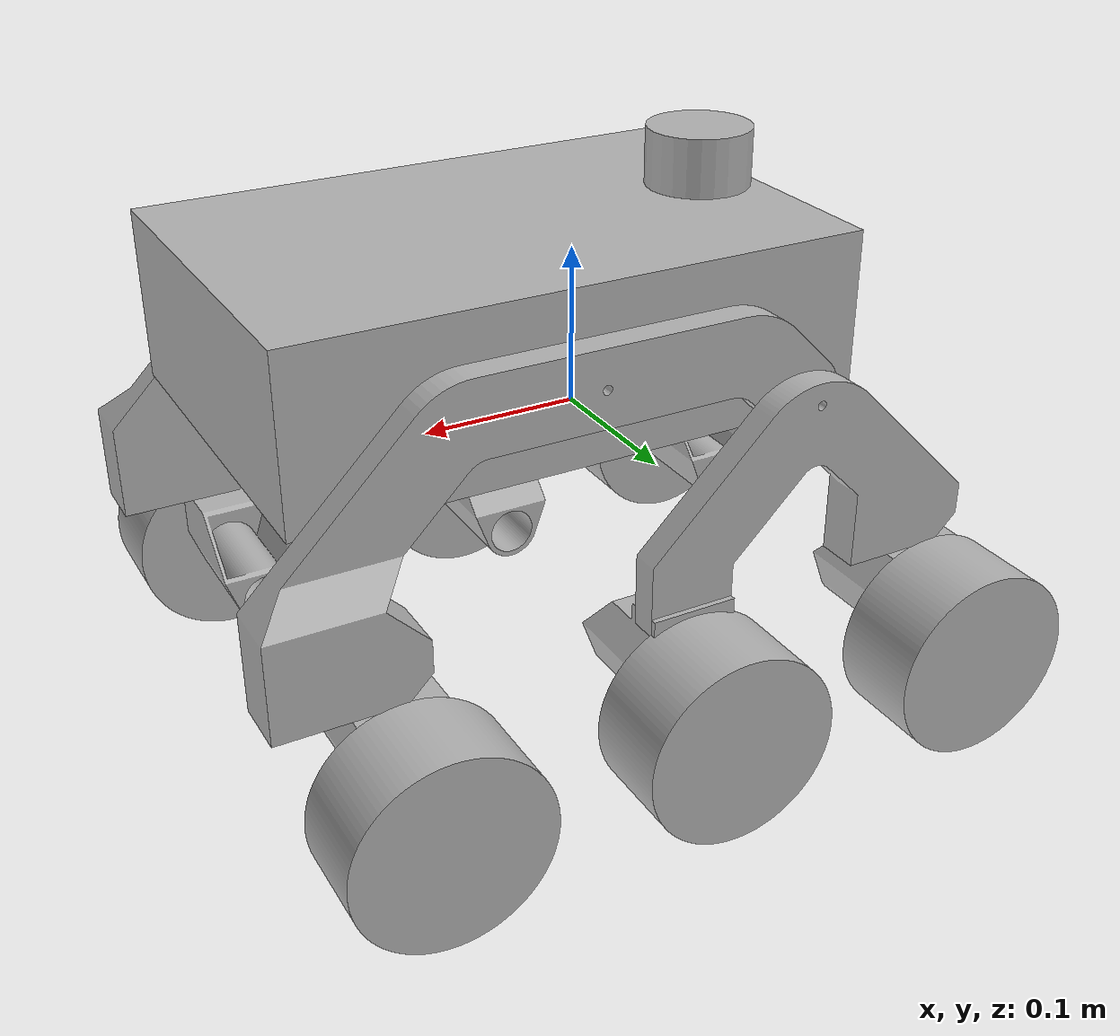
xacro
<?xml version="1.0" ?>
<robot name="forros" xmlns:xacro="http://www.ros.org/wiki/xacro">

<xacro:include filename="$(find forros_description)/urdf/materials.xacro" />
<xacro:include filename="$(find forros_description)/urdf/forros.ros2control" />
<xacro:include filename="$(find forros_description)/urdf/forros.gazebo" />
<link name="base_link">
  <inertial>
    <origin xyz="0.1099999999999859 0.115 0.12499999999999567" rpy="0 0 0"/>
    <mass value="4.238938346244173"/>
    <inertia ixx="0.0169907" iyy="0.0346538" izz="0.0459219" ixy="-0.0" iyz="-0.0" ixz="0.0"/>
  </inertial>
  <visual>
    <origin xyz="0 0 0" rpy="0 0 0"/>
    <geometry>
      <mesh filename="file://$(find forros_description)/meshes/base_link.stl" scale="0.001 0.001 0.001"/>
    </geometry>
    <material name="silver"/>
  </visual>
  <collision>
    <origin xyz="0 0 0" rpy="0 0 0"/>
    <geometry>
      <mesh filename="file://$(find forros_description)/meshes/base_link.stl" scale="0.001 0.001 0.001"/>
    </geometry>
  </collision>
</link>

<link name="right_mid_wheel_1">
  <inertial>
    <origin xyz="1.0320994585366616e-07 0.02500000022351742 4.163336342344337e-17" rpy="0 0 0"/>
    <mass value="0.3313045200437847"/>
    <inertia ixx="0.0002916" iyy="0.0004451" izz="0.0002916" ixy="0.0" iyz="0.0" ixz="-0.0"/>
  </inertial>
  <visual>
    <origin xyz="-0.069447 -0.2451 0.04945" rpy="0 0 0"/>
    <geometry>
      <mesh filename="file://$(find forros_description)/meshes/right_mid_wheel_1.stl" scale="0.001 0.001 0.001"/>
    </geometry>
    <material name="silver"/>
  </visual>
  <collision>
    <origin xyz="-0.069447 -0.2451 0.04945" rpy="0 0 0"/>
    <geometry>
      <mesh filename="file://$(find forros_description)/meshes/right_mid_wheel_1.stl" scale="0.001 0.001 0.001"/>
    </geometry>
  </collision>
</link>

<link name="left_mid_wheel_1">
  <inertial>
    <origin xyz="1.0320994585366616e-07 -0.025000000223517366 9.71445146547012e-17" rpy="0 0 0"/>
    <mass value="0.3313045200437847"/>
    <inertia ixx="0.0002916" iyy="0.0004451" izz="0.0002916" ixy="0.0" iyz="0.0" ixz="0.0"/>
  </inertial>
  <visual>
    <origin xyz="-0.069447 0.0151 0.04945" rpy="0 0 0"/>
    <geometry>
      <mesh filename="file://$(find forros_description)/meshes/left_mid_wheel_1.stl" scale="0.001 0.001 0.001"/>
    </geometry>
    <material name="silver"/>
  </visual>
  <collision>
    <origin xyz="-0.069447 0.0151 0.04945" rpy="0 0 0"/>
    <geometry>
      <mesh filename="file://$(find forros_description)/meshes/left_mid_wheel_1.stl" scale="0.001 0.001 0.001"/>
    </geometry>
  </collision>
</link>

<link name="BogieArm_left_1">
  <inertial>
    <origin xyz="-0.007934958334341356 -0.005960926612365235 -0.05324218357569474" rpy="0 0 0"/>
    <mass value="0.2125433566188938"/>
    <inertia ixx="0.000177" iyy="0.000759" izz="0.000595" ixy="1.7e-05" iyz="6e-06" ixz="-2.5e-05"/>
  </inertial>
  <visual>
    <origin xyz="0.0 0.0001 -0.098284" rpy="0 0 0"/>
    <geometry>
      <mesh filename="file://$(find forros_description)/meshes/BogieArm_left_1.stl" scale="0.001 0.001 0.001"/>
    </geometry>
    <material name="silver"/>
  </visual>
  <collision>
    <origin xyz="0.0 0.0001 -0.098284" rpy="0 0 0"/>
    <geometry>
      <mesh filename="file://$(find forros_description)/meshes/BogieArm_left_1.stl" scale="0.001 0.001 0.001"/>
    </geometry>
  </collision>
</link>

<link name="motor_house_left_mid_1">
  <inertial>
    <origin xyz="-0.02301405530505564 0.020048835168710432 -0.021928305846190148" rpy="0 0 0"/>
    <mass value="0.10114695832213066"/>
    <inertia ixx="5.5e-05" iyy="4.2e-05" izz="4.9e-05" ixy="0.0" iyz="8e-06" ixz="-0.0"/>
  </inertial>
  <visual>
    <origin xyz="-0.092547 0.0076 0.00445" rpy="0 0 0"/>
    <geometry>
      <mesh filename="file://$(find forros_description)/meshes/motor_house_left_mid_1.stl" scale="0.001 0.001 0.001"/>
    </geometry>
    <material name="silver"/>
  </visual>
  <collision>
    <origin xyz="-0.092547 0.0076 0.00445" rpy="0 0 0"/>
    <geometry>
      <mesh filename="file://$(find forros_description)/meshes/motor_house_left_mid_1.stl" scale="0.001 0.001 0.001"/>
    </geometry>
  </collision>
</link>

<link name="BogieArm_right_1">
  <inertial>
    <origin xyz="-0.007915464092062029 0.005964707737386582 -0.053111379950770074" rpy="0 0 0"/>
    <mass value="0.21306680939944553"/>
    <inertia ixx="0.000179" iyy="0.00076" izz="0.000595" ixy="-1.7e-05" iyz="-6e-06" ixz="-2.5e-05"/>
  </inertial>
  <visual>
    <origin xyz="0.0 -0.2301 -0.098284" rpy="0 0 0"/>
    <geometry>
      <mesh filename="file://$(find forros_description)/meshes/BogieArm_right_1.stl" scale="0.001 0.001 0.001"/>
    </geometry>
    <material name="silver"/>
  </visual>
  <collision>
    <origin xyz="0.0 -0.2301 -0.098284" rpy="0 0 0"/>
    <geometry>
      <mesh filename="file://$(find forros_description)/meshes/BogieArm_right_1.stl" scale="0.001 0.001 0.001"/>
    </geometry>
  </collision>
</link>

<link name="right_back_wheel_1">
  <inertial>
    <origin xyz="3.2278066333657485e-07 0.025000000067055467 4.163336342344337e-17" rpy="0 0 0"/>
    <mass value="0.3313045200437847"/>
    <inertia ixx="0.0002916" iyy="0.0004451" izz="0.0002916" ixy="-0.0" iyz="0.0" ixz="-0.0"/>
  </inertial>
  <visual>
    <origin xyz="-0.221726 -0.2451 0.04945" rpy="0 0 0"/>
    <geometry>
      <mesh filename="file://$(find forros_description)/meshes/right_back_wheel_1.stl" scale="0.001 0.001 0.001"/>
    </geometry>
    <material name="silver"/>
  </visual>
  <collision>
    <origin xyz="-0.221726 -0.2451 0.04945" rpy="0 0 0"/>
    <geometry>
      <mesh filename="file://$(find forros_description)/meshes/right_back_wheel_1.stl" scale="0.001 0.001 0.001"/>
    </geometry>
  </collision>
</link>

<link name="right_front_wheel_1">
  <inertial>
    <origin xyz="1.032099458120328e-07 0.025000000223517643 4.163336342344337e-17" rpy="0 0 0"/>
    <mass value="0.3313045200437847"/>
    <inertia ixx="0.0002916" iyy="0.0004451" izz="0.0002916" ixy="-0.0" iyz="0.0" ixz="-0.0"/>
  </inertial>
  <visual>
    <origin xyz="0.080553 -0.2446 0.04945" rpy="0 0 0"/>
    <geometry>
      <mesh filename="file://$(find forros_description)/meshes/right_front_wheel_1.stl" scale="0.001 0.001 0.001"/>
    </geometry>
    <material name="silver"/>
  </visual>
  <collision>
    <origin xyz="0.080553 -0.2446 0.04945" rpy="0 0 0"/>
    <geometry>
      <mesh filename="file://$(find forros_description)/meshes/right_front_wheel_1.stl" scale="0.001 0.001 0.001"/>
    </geometry>
  </collision>
</link>

<link name="left_back_wheel_1">
  <inertial>
    <origin xyz="3.2278066333657485e-07 -0.02500000006705523 4.85722573273506e-17" rpy="0 0 0"/>
    <mass value="0.3313045200437847"/>
    <inertia ixx="0.0002916" iyy="0.0004451" izz="0.0002916" ixy="0.0" iyz="0.0" ixz="0.0"/>
  </inertial>
  <visual>
    <origin xyz="-0.221726 0.0151 0.04945" rpy="0 0 0"/>
    <geometry>
      <mesh filename="file://$(find forros_description)/meshes/left_back_wheel_1.stl" scale="0.001 0.001 0.001"/>
    </geometry>
    <material name="silver"/>
  </visual>
  <collision>
    <origin xyz="-0.221726 0.0151 0.04945" rpy="0 0 0"/>
    <geometry>
      <mesh filename="file://$(find forros_description)/meshes/left_back_wheel_1.stl" scale="0.001 0.001 0.001"/>
    </geometry>
  </collision>
</link>

<link name="left_front_wheel_1">
  <inertial>
    <origin xyz="1.0320994583978838e-07 -0.025000000223517435 4.163336342344337e-17" rpy="0 0 0"/>
    <mass value="0.3313045200437847"/>
    <inertia ixx="0.0002916" iyy="0.0004451" izz="0.0002916" ixy="0.0" iyz="0.0" ixz="0.0"/>
  </inertial>
  <visual>
    <origin xyz="0.080553 0.0146 0.04945" rpy="0 0 0"/>
    <geometry>
      <mesh filename="file://$(find forros_description)/meshes/left_front_wheel_1.stl" scale="0.001 0.001 0.001"/>
    </geometry>
    <material name="silver"/>
  </visual>
  <collision>
    <origin xyz="0.080553 0.0146 0.04945" rpy="0 0 0"/>
    <geometry>
      <mesh filename="file://$(find forros_description)/meshes/left_front_wheel_1.stl" scale="0.001 0.001 0.001"/>
    </geometry>
  </collision>
</link>

<link name="motor_house_right_mid_1">
  <inertial>
    <origin xyz="0.02298594469494438 -0.02004883516871042 -0.02192830584619015" rpy="0 0 0"/>
    <mass value="0.1011469583221307"/>
    <inertia ixx="5.5e-05" iyy="4.2e-05" izz="4.9e-05" ixy="-0.0" iyz="-8e-06" ixz="-0.0"/>
  </inertial>
  <visual>
    <origin xyz="-0.046547 -0.2376 0.00445" rpy="0 0 0"/>
    <geometry>
      <mesh filename="file://$(find forros_description)/meshes/motor_house_right_mid_1.stl" scale="0.001 0.001 0.001"/>
    </geometry>
    <material name="silver"/>
  </visual>
  <collision>
    <origin xyz="-0.046547 -0.2376 0.00445" rpy="0 0 0"/>
    <geometry>
      <mesh filename="file://$(find forros_description)/meshes/motor_house_right_mid_1.stl" scale="0.001 0.001 0.001"/>
    </geometry>
  </collision>
</link>

<link name="motor_house_left_front_1">
  <inertial>
    <origin xyz="-0.010495831765585162 0.03363253748664037 -0.03842749012891794" rpy="0 0 0"/>
    <mass value="0.03461695947730542"/>
    <inertia ixx="2.6e-05" iyy="2e-05" izz="2.2e-05" ixy="0.0" iyz="4e-06" ixz="-0.0"/>
  </inertial>
  <visual>
    <origin xyz="0.07 0.0197 -0.001" rpy="0 0 0"/>
    <geometry>
      <mesh filename="file://$(find forros_description)/meshes/motor_house_left_front_1.stl" scale="0.001 0.001 0.001"/>
    </geometry>
    <material name="silver"/>
  </visual>
  <collision>
    <origin xyz="0.07 0.0197 -0.001" rpy="0 0 0"/>
    <geometry>
      <mesh filename="file://$(find forros_description)/meshes/motor_house_left_front_1.stl" scale="0.001 0.001 0.001"/>
    </geometry>
  </collision>
</link>

<link name="motor_house_right_front_1">
  <inertial>
    <origin xyz="-0.010495831765585203 0.20556746251335986 -0.036427490128917904" rpy="0 0 0"/>
    <mass value="0.03461695947730542"/>
    <inertia ixx="2.6e-05" iyy="2e-05" izz="2.2e-05" ixy="-0.0" iyz="-4e-06" ixz="-0.0"/>
  </inertial>
  <visual>
    <origin xyz="0.07 ${-0.0105-0.2392} 0.001" rpy="0 0 0"/>
    <geometry>
      <mesh filename="file://$(find forros_description)/meshes/motor_house_right_front_1.stl" scale="0.001 0.001 0.001"/>
    </geometry>
    <material name="silver"/>
  </visual>
  <collision>
    <origin xyz="0.07 ${-0.0105-0.2392} 0.001" rpy="0 0 0"/>
    <geometry>
      <mesh filename="file://$(find forros_description)/meshes/motor_house_right_front_1.stl" scale="0.001 0.001 0.001"/>
    </geometry>
  </collision>
</link>

<link name="motor_house_right_back_2">
  <inertial>
    <origin xyz="-0.010495612194957038 0.22156746235697392 -0.036427490128845094" rpy="0 0 0"/>
    <mass value="0.03461695947738301"/>
    <inertia ixx="2.6e-05" iyy="2e-05" izz="2.2e-05" ixy="-0.0" iyz="-4e-06" ixz="-0.0"/>
  </inertial>
  <visual>
    <origin xyz="-0.232279 ${0.0052-0.2392} 0.001" rpy="0 0 0"/>
    <geometry>
      <mesh filename="file://$(find forros_description)/meshes/motor_house_right_back_2.stl" scale="0.001 0.001 0.001"/>
    </geometry>
    <material name="silver"/>
  </visual>
  <collision>
    <origin xyz="-0.232279 ${0.0052-0.2392} 0.001" rpy="0 0 0"/>
    <geometry>
      <mesh filename="file://$(find forros_description)/meshes/motor_house_right_back_2.stl" scale="0.001 0.001 0.001"/>
    </geometry>
  </collision>
</link>

<link name="motor_house_left_back_1">
  <inertial>
    <origin xyz="-0.010495612194957038 0.018632537643026307 -0.03842749012884514" rpy="0 0 0"/>
    <mass value="0.03461695947738301"/>
    <inertia ixx="2.6e-05" iyy="2e-05" izz="2.2e-05" ixy="0.0" iyz="4e-06" ixz="-0.0"/>
  </inertial>
  <visual>
    <origin xyz="-0.232279 0.0052 -0.001" rpy="0 0 0"/>
    <geometry>
      <mesh filename="file://$(find forros_description)/meshes/motor_house_left_back_1.stl" scale="0.001 0.001 0.001"/>
    </geometry>
    <material name="silver"/>
  </visual>
  <collision>
    <origin xyz="-0.232279 0.0052 -0.001" rpy="0 0 0"/>
    <geometry>
      <mesh filename="file://$(find forros_description)/meshes/motor_house_left_back_1.stl" scale="0.001 0.001 0.001"/>
    </geometry>
  </collision>
</link>

<link name="RockerArm_left_1">
  <inertial>
    <origin xyz="0.06420889004519563 -0.010702899179575369 -0.04635989938036705" rpy="0 0 0"/>
    <mass value="0.3451338053749135"/>
    <inertia ixx="0.000724" iyy="0.003445" izz="0.00276" ixy="8e-05" iyz="-5.3e-05" ixz="0.001007"/>
  </inertial>
  <visual>
    <origin xyz="-0.11 -0.015 -0.125" rpy="0 0 0"/>
    <geometry>
      <mesh filename="file://$(find forros_description)/meshes/RockerArm_left_1.stl" scale="0.001 0.001 0.001"/>
    </geometry>
    <material name="silver"/>
  </visual>
  <collision>
    <origin xyz="-0.11 -0.015 -0.125" rpy="0 0 0"/>
    <geometry>
      <mesh filename="file://$(find forros_description)/meshes/RockerArm_left_1.stl" scale="0.001 0.001 0.001"/>
    </geometry>
  </collision>
</link>

<link name="RockerArm_right_1">
  <inertial>
    <origin xyz="0.06420889004706408 0.010702899179575398 -0.04635989937979226" rpy="0 0 0"/>
    <mass value="0.3451338053749135"/>
    <inertia ixx="0.000724" iyy="0.003445" izz="0.00276" ixy="-8e-05" iyz="5.3e-05" ixz="0.001007"/>
  </inertial>
  <visual>
    <origin xyz="-0.11 -0.215 -0.125" rpy="0 0 0"/>
    <geometry>
      <mesh filename="file://$(find forros_description)/meshes/RockerArm_right_1.stl" scale="0.001 0.001 0.001"/>
    </geometry>
    <material name="silver"/>
  </visual>
  <collision>
    <origin xyz="-0.11 -0.215 -0.125" rpy="0 0 0"/>
    <geometry>
      <mesh filename="file://$(find forros_description)/meshes/RockerArm_right_1.stl" scale="0.001 0.001 0.001"/>
    </geometry>
  </collision>
</link>

<joint name="right_mid_wheel" type="continuous">
  <origin xyz="0.0229 0.0075 -0.045" rpy="0 0 0"/>
  <parent link="motor_house_right_mid_1"/>
  <child link="right_mid_wheel_1"/>
  <axis xyz="-0.0 -1.0 0.0"/>
  <limit effort="10.0" velocity="20.0"/>
</joint>

<joint name="left_mid_wheel" type="continuous">
  <origin xyz="-0.0231 -0.0075 -0.045" rpy="0 0 0"/>
  <parent link="motor_house_left_mid_1"/>
  <child link="left_mid_wheel_1"/>
  <axis xyz="-0.0 -1.0 0.0"/>
  <limit effort="10.0" velocity="20.0"/>
</joint>

<joint name="left_rocker_bogie" type="revolute">
  <origin xyz="-0.11 -0.0151 -0.026716" rpy="0 0 0"/>
  <parent link="RockerArm_left_1"/>
  <child link="BogieArm_left_1"/>
  <axis xyz="-0.0 1.0 0.0"/>
  <limit upper="0.872665" lower="-0.436332" effort="100" velocity="100"/>
  <dynamics damping="0.1" friction="0.5"/>
</joint>

<joint name="Rigid 58" type="fixed">
  <origin xyz="0.092547 -0.0075 -0.102734" rpy="0 0 0"/>
  <parent link="BogieArm_left_1"/>
  <child link="motor_house_left_mid_1"/>
</joint>

<joint name="right_rocker_bogie" type="revolute">
  <origin xyz="-0.11 0.0151 -0.026716" rpy="0 0 0"/>
  <parent link="RockerArm_right_1"/>
  <child link="BogieArm_right_1"/>
  <axis xyz="-0.0 1.0 0.0"/>
  <limit upper="0.872665" lower="-0.436332" effort="100" velocity="100"/>
  <dynamics damping="0.1" friction="0.5"/>
</joint>

<joint name="right_back_wheel" type="continuous">
  <origin xyz="-0.010553 ${0.2501-0.2392} -0.04845" rpy="0 0 0"/>
  <parent link="motor_house_right_back_2"/>
  <child link="right_back_wheel_1"/>
  <axis xyz="0.0 -1.0 0.0"/>
  <limit effort="10.0" velocity="20.0"/>
</joint>

<joint name="right_front_wheel" type="continuous">
  <origin xyz="-0.010553 ${0.2341-0.2392} -0.04845" rpy="0 0 0"/>
  <parent link="motor_house_right_front_1"/>
  <child link="right_front_wheel_1"/>
  <axis xyz="0.0 -1.0 0.0"/>
  <limit effort="10.0" velocity="20.0"/>
</joint>

<joint name="left_back_wheel" type="continuous">
  <origin xyz="-0.010553 -0.0099 -0.05045" rpy="0 0 0"/>
  <parent link="motor_house_left_back_1"/>
  <child link="left_back_wheel_1"/>
  <axis xyz="-0.0 -1.0 -0.0"/>
  <limit effort="10.0" velocity="20.0"/>
</joint>

<joint name="left_front_wheel" type="continuous">
  <origin xyz="-0.010553 0.0051 -0.05045" rpy="0 0 0"/>
  <parent link="motor_house_left_front_1"/>
  <child link="left_front_wheel_1"/>
  <axis xyz="-0.0 -1.0 -0.0"/>
  <limit effort="10.0" velocity="20.0"/>
</joint>

<joint name="Rigid 67" type="fixed">
  <origin xyz="0.046547 0.0075 -0.102734" rpy="0 0 0"/>
  <parent link="BogieArm_right_1"/>
  <child link="motor_house_right_mid_1"/>
</joint>

<joint name="motor_house_left_front" type="revolute">
  <origin xyz="-0.07 -0.0196 -0.097284" rpy="0 0 0"/>
  <parent link="BogieArm_left_1"/>
  <child link="motor_house_left_front_1"/>
  <axis xyz="0.0 0.0 1.0"/>
  <limit upper="1.570796" lower="-1.570796" effort="100" velocity="100"/>
</joint>

<joint name="motor_house_right_front" type="revolute">//fix
  <origin xyz="-0.07 ${-0.2196+0.2392} -0.099284" rpy="0 0 0"/>
  <parent link="BogieArm_right_1"/>
  <child link="motor_house_right_front_1"/>
  <axis xyz="-0.0 0.0 -1.0"/>
  <limit upper="1.570796" lower="-1.570796" effort="100" velocity="100"/>
</joint>

<joint name="motor_house_right_back" type="revolute">//fix
  <origin xyz="0.122279 ${-0.22+0.2392} -0.126" rpy="0 0 0"/>
  <parent link="RockerArm_right_1"/>
  <child link="motor_house_right_back_2"/>
  <axis xyz="-0.0 0.0 -1.0"/>
  <limit upper="1.570796" lower="-1.570796" effort="100" velocity="100"/>
</joint>

<joint name="motor_house_left_back" type="revolute">
  <origin xyz="0.122279 -0.0202 -0.124" rpy="0 0 0"/>
  <parent link="RockerArm_left_1"/>
  <child link="motor_house_left_back_1"/>
  <axis xyz="0.0 0.0 1.0"/>
  <limit upper="1.570796" lower="-1.570796" effort="100" velocity="100"/>
</joint>

<joint name="left_rocker_arm" type="revolute">
  <origin xyz="0.11 0.015 0.125" rpy="0 0 0"/>
  <parent link="base_link"/>
  <child link="RockerArm_left_1"/>
  <axis xyz="0.0 -1.0 0.0"/>
  <limit upper="0.349066" lower="-0.349066" effort="100" velocity="100"/>
  <dynamics damping="2" friction="0.5"/>
</joint>

<joint name="right_rocker_arm" type="revolute">
  <origin xyz="0.11 0.215 0.125" rpy="0 0 0"/>
  <parent link="base_link"/>
  <child link="RockerArm_right_1"/>
  <axis xyz="0.0 1.0 0.0"/>
  <limit upper="0.349066" lower="-0.349066" effort="100" velocity="100"/>
  <dynamics damping="2" friction="0.5"/>
  <mimic joint="left_rocker_arm" multiplier="1" offset="0"/>
</joint>

<link name="lidar_link">
  <inertial>
    <mass value="0.11"/>
    <inertia ixx="1e-5" iyy="1e-5" izz="1e-5" ixy="0" iyz="0" ixz="0"/>
  </inertial>
  <visual>
    <geometry>
      <cylinder radius="0.0278" length="0.0413"/>
    </geometry>
    <material name="silver"/>
  </visual>
  <collision>
    <geometry>
      <cylinder radius="0.0278" length="0.0413"/>
    </geometry>
  </collision>
</link>

<joint name="lidar_joint" type="fixed">
  <origin xyz="-0.0102 0.115 0.18" rpy="0 0 0"/>
  <parent link="base_link"/>
  <child link="lidar_link"/>
</joint>

<link name="camera_link">
  <inertial>
    <mass value="0.072"/>
    <inertia ixx="1e-5" iyy="1e-5" izz="1e-5" ixy="0" iyz="0" ixz="0"/>
  </inertial>
  <visual>
    <geometry>
      <box size="0.025 0.09 0.025"/>
    </geometry>
    <material name="silver"/>
  </visual>
  <collision>
    <geometry>
      <box size="0.025 0.09 0.025"/>
    </geometry>
  </collision>
</link>

<joint name="camera_joint" type="fixed">
  <origin xyz="-0.04 0.115 0.12" rpy="3.14159 -3.14159 0"/>
  <parent link="base_link"/>
  <child link="camera_link"/>
</joint>

</robot>

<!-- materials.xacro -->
<robot name="forros" xmlns:xacro="http://www.ros.org/wiki/xacro" >

<material name="silver">
  <color rgba="0.700 0.700 0.700 1.000"/>
</material>

</robot>

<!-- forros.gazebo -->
<robot name="forros" xmlns:xacro="http://www.ros.org/wiki/xacro">

  <xacro:property name="body_color" value="Gazebo/Silver" />

  <gazebo reference="base_link">
    <material>${body_color}</material>
    <mu1>0.2</mu1>
    <mu2>0.2</mu2>
    <self_collide>false</self_collide>
    <gravity>true</gravity>
  </gazebo>

  <gazebo reference="right_mid_wheel_1">
    <material>${body_color}</material>
    <mu1>1.5</mu1>
    <mu2>1.5</mu2>
    <self_collide>false</self_collide>
  </gazebo>

  <gazebo reference="left_mid_wheel_1">
    <material>${body_color}</material>
    <mu1>1.5</mu1>
    <mu2>1.5</mu2>
    <self_collide>false</self_collide>
  </gazebo>

  <gazebo reference="BogieArm_left_1">
    <material>${body_color}</material>
    <mu1>0.2</mu1>
    <mu2>0.2</mu2>
    <self_collide>false</self_collide>
  </gazebo>

  <gazebo reference="motor_house_left_mid_1">
    <material>${body_color}</material>
    <mu1>0.2</mu1>
    <mu2>0.2</mu2>
    <self_collide>false</self_collide>
  </gazebo>

  <gazebo reference="BogieArm_right_1">
    <material>${body_color}</material>
    <mu1>0.2</mu1>
    <mu2>0.2</mu2>
    <self_collide>false</self_collide>
  </gazebo>

  <gazebo reference="right_back_wheel_1">
    <material>${body_color}</material>
    <mu1>1.5</mu1>
    <mu2>1.5</mu2>
    <self_collide>false</self_collide>
  </gazebo>

  <gazebo reference="right_front_wheel_1">
    <material>${body_color}</material>
    <mu1>1.5</mu1>
    <mu2>1.5</mu2>
    <self_collide>false</self_collide>
  </gazebo>

  <gazebo reference="left_back_wheel_1">
    <material>${body_color}</material>
    <mu1>1.5</mu1>
    <mu2>1.5</mu2>
    <self_collide>false</self_collide>
  </gazebo>

  <gazebo reference="left_front_wheel_1">
    <material>${body_color}</material>
    <mu1>1.5</mu1>
    <mu2>1.5</mu2>
    <self_collide>false</self_collide>
  </gazebo>

  <gazebo reference="motor_house_right_mid_1">
    <material>${body_color}</material>
    <mu1>0.2</mu1>
    <mu2>0.2</mu2>
    <self_collide>false</self_collide>
  </gazebo>

  <gazebo reference="motor_house_left_front_1">
    <material>${body_color}</material>
    <mu1>0.2</mu1>
    <mu2>0.2</mu2>
    <self_collide>false</self_collide>
  </gazebo>

  <gazebo reference="motor_house_right_front_1">
    <material>${body_color}</material>
    <mu1>0.2</mu1>
    <mu2>0.2</mu2>
    <self_collide>false</self_collide>
  </gazebo>

  <gazebo reference="motor_house_right_back_2">
    <material>${body_color}</material>
    <mu1>0.2</mu1>
    <mu2>0.2</mu2>
    <self_collide>false</self_collide>
  </gazebo>

  <gazebo reference="motor_house_left_back_1">
    <material>${body_color}</material>
    <mu1>0.2</mu1>
    <mu2>0.2</mu2>
    <self_collide>false</self_collide>
  </gazebo>

  <gazebo reference="RockerArm_left_1">
    <material>${body_color}</material>
    <mu1>0.2</mu1>
    <mu2>0.2</mu2>
    <self_collide>false</self_collide>
  </gazebo>

  <gazebo reference="RockerArm_right_1">
    <material>${body_color}</material>
    <mu1>0.2</mu1>
    <mu2>0.2</mu2>
    <self_collide>false</self_collide>
  </gazebo>

  <gazebo>
    <plugin filename="gz-sim-odometry-publisher-system" name="gz::sim::systems::OdometryPublisher">
      <odom_frame>odom</odom_frame>
      <robot_base_frame>base_link</robot_base_frame>
      <odom_publish_frequency>30</odom_publish_frequency>
      <dimensions>2</dimensions>
      <odom_topic>odom</odom_topic>
      <tf_topic>tf</tf_topic>
    </plugin>
  </gazebo>

  <gazebo reference="lidar_link">
    <sensor name="lidar_link" type="gpu_lidar">
      <pose>0 0 0 0 0 0</pose>
      <topic>scan</topic>
      <update_rate>10</update_rate>
      <frame_id>lidar_link</frame_id>
      <ray>
        <scan>
          <horizontal>
            <samples>500</samples>
            <resolution>1</resolution>
            <min_angle>-3.14159</min_angle>
            <max_angle>3.14159</max_angle>
          </horizontal>
        </scan>
        <range>
          <min>0.05</min>
          <max>12.0</max>
          <resolution>0.015</resolution>
        </range>
        <noise>
          <type>gaussian</type>
          <mean>0.0</mean>
          <stddev>0.03</stddev>
        </noise>
      </ray>
      <always_on>true</always_on>
      <visualize>true</visualize>
    </sensor>
  </gazebo>

  <gazebo reference="camera_link">
  <sensor name="rgbd_camera" type="rgbd_camera">
    <pose>0 0 0 0 0 0</pose>
    <topic>camera</topic>
    <update_rate>15</update_rate>
    <frame_id>camera_link</frame_id>
    <camera>
      <horizontal_fov>1.5009</horizontal_fov>
      <image>
        <width>640</width>
        <height>480</height>
      </image>
      <clip>
        <near>0.1</near>
        <far>10.0</far>
      </clip>
    </camera>
  </sensor>
</gazebo>

  <gazebo>
    <plugin filename="gz_ros2_control-system" name="gz_ros2_control::GazeboSimROS2ControlPlugin">
      <parameters>$(find forros_description)/config/ros2_controllers.yaml</parameters>
    </plugin>
  </gazebo>

</robot>
